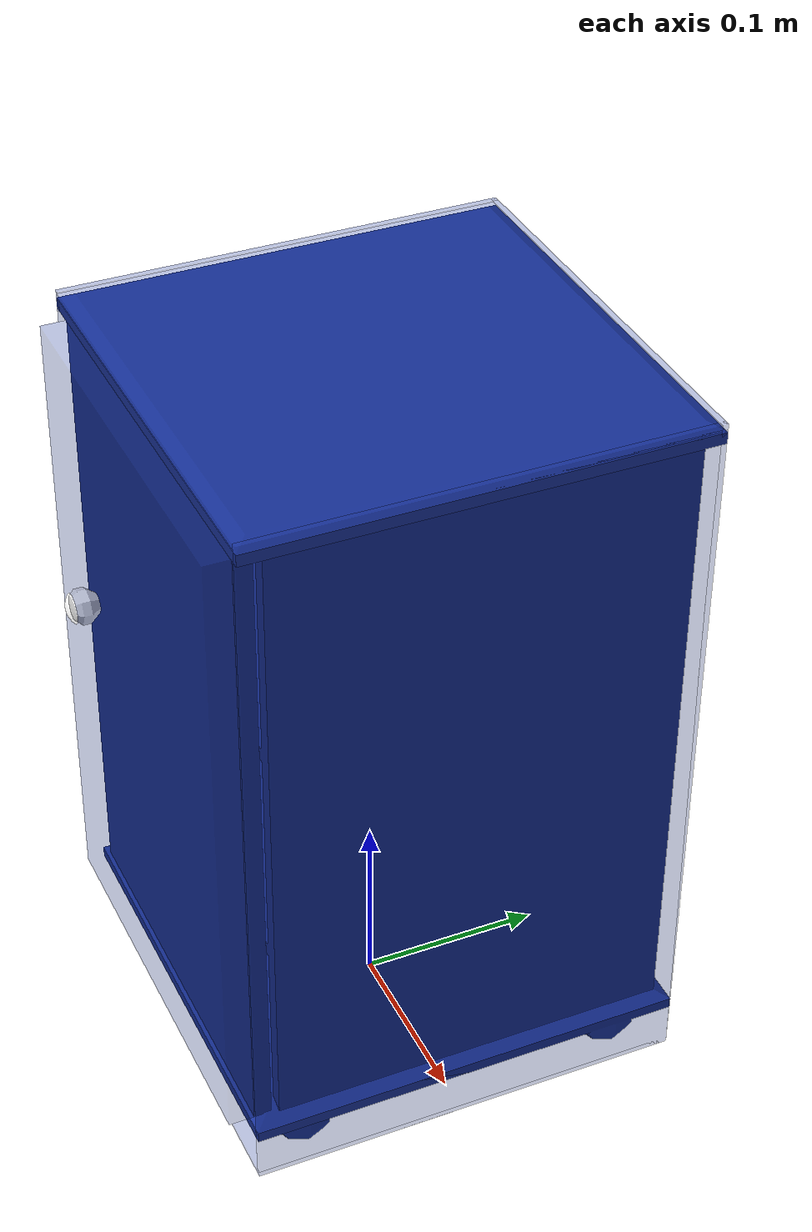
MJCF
<mujoco model="round_door_cabinet">
    <compiler angle="radian" meshdir="./" />
    <size njmax="500" nconmax="100" />
    <asset>
        <mesh name="body_vis"   file="round_door_cabinet/body.obj"   scale="0.5 0.5 0.5" />
        <mesh name="door_vis"   file="round_door_cabinet/door.obj"   scale="0.5 0.5 0.5" />
        <mesh name="handle_vis" file="round_door_cabinet/handle.obj" scale="0.5 0.5 0.5" />
    </asset>
    <worldbody>
        <body>
          <body name="object">

            <body name="base" pos="0.00000 0.00000 0.00000" quat="0.70711 0.70711 0 0">

              <geom type="mesh" mesh="body_vis" conaffinity="0" contype="0" group="1" rgba="0.10 0.20 0.60 1" />

              <geom type="box" pos="0.00000 0.19900 -0.12300" size="0.12000 0.19900 0.00150" rgba="0.1 0.2 0.6 0.3" group="0" solimp="0.998 0.998 0.001" solref="0.001 1" density="10000" friction="0.95 0.3 0.1" />

              <geom type="box" pos="-0.11850 0.19900 -0.00450" size="0.00150 0.19900 0.12000" rgba="0.1 0.2 0.6 0.3" group="0" solimp="0.998 0.998 0.001" solref="0.001 1" density="10000" friction="0.95 0.3 0.1" />

              <geom type="box" pos="0.11850 0.19900 -0.00450" size="0.00150 0.19900 0.12000" rgba="0.1 0.2 0.6 0.3" group="0" solimp="0.998 0.998 0.001" solref="0.001 1" density="10000" friction="0.95 0.3 0.1" />

              <geom type="box" pos="0.00000 0.39600 -0.00450" size="0.12000 0.00150 0.12000" rgba="0.1 0.2 0.6 0.3" group="0" solimp="0.998 0.998 0.001" solref="0.001 1" density="10000" friction="0.95 0.3 0.1" />

              <geom type="box" pos="0.00000 0.00150 -0.00450" size="0.12000 0.00150 0.12000" rgba="0.1 0.2 0.6 0.3" group="0" solimp="0.998 0.998 0.001" solref="0.001 1" density="10000" friction="0.95 0.3 0.1" />

              <body name="cabinet_door" pos="0.00000 0.00000 0.00000">
                <inertial pos="0.00000 0.00000 0.00000" mass="2" diaginertia="0.1 0.1 0.1" />

                <joint name="cabinet_door_joint_0" type="hinge" pos="0.11095 0.21035 0.10125" axis="0 1 0" limited="true" range="0.0 2.5" damping="1" frictionloss="2" />

                <!-- door: offset 0.003 forward in local z to clear body frame (0.4mm gap → 3.4mm) -->
                <geom type="mesh" mesh="door_vis"   pos="0 0 0.003" conaffinity="0" contype="0" group="1" rgba="0.10 0.20 0.60 1" />
                <!-- handle mesh at its OBJ position (left side, front face) -->
                <geom type="mesh" mesh="handle_vis" conaffinity="0" contype="0" group="1" rgba="1 1 1 1" />

                <!-- door collision box (scaled OBJ center + same z offset) -->
                <geom type="box" pos="0.00000 0.21035 0.11445" size="0.11095 0.17500 0.01315" rgba="0.1 0.2 0.6 0.3" group="0" solimp="0.998 0.998 0.001" solref="0.001 1" density="100" friction="0.95 0.3 0.1" />
                <!-- handle collision sphere at actual handle center -->
                <geom type="sphere" pos="-0.09700 0.22300 0.11930" size="0.01200" rgba="1 1 1 0.3" group="0" solimp="0.998 0.998 0.001" solref="0.001 1" density="100" friction="0.95 0.3 0.1" />
              </body>

            </body>
          </body>

          <site rgba="0 0 0 0" size="0.05" pos="0.00000 0.00000 0.00000" name="bottom_site" />
          <site rgba="0 0 0 0" size="0.05" pos="0.00000 0.00000 0.39750" name="top_site" />
          <site rgba="0 0 0 0" size="0.05" pos="0.12000 0.12450 0.00000" name="horizontal_radius_site" />
        </body>
    </worldbody>
</mujoco>
